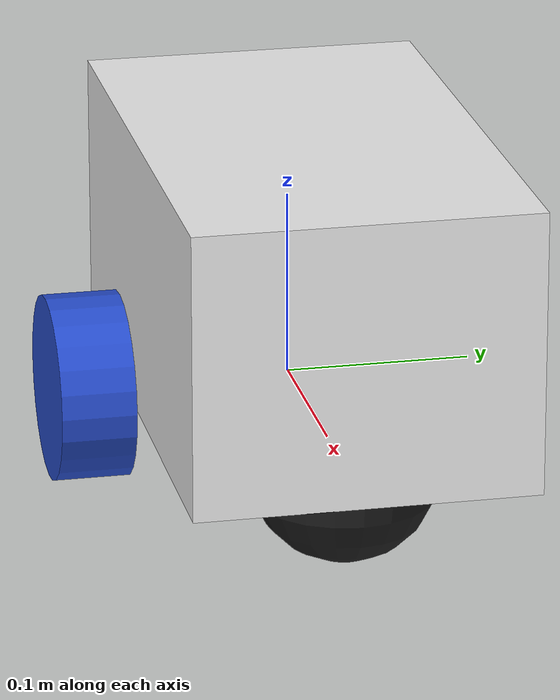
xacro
<?xml version="1.0"?>
<robot xmlns:xacro="http://www.ros.org/wiki/xacro">

    <gazebo reference="chassis">
        <material>Gazebo/White</material>
    </gazebo>

    <gazebo reference="left_wheel">
        <material>Gazebo/Blue</material>
    </gazebo>

    <gazebo reference="right_wheel">
        <material>Gazebo/Blue</material>
    </gazebo>

    <gazebo reference="caster_wheel">
        <material>Gazebo/Black</material>
        <mu1 value = "0.001" />
        <mu2 value = "0.001" />
    </gazebo>

    <!-- Example link -->
    <xacro:include filename="inertial_macros.xacro"/>

    <joint name="base_footprint_joint" type="fixed">
        <parent link="base_link"/>
        <child link="base_footprint"/>
        <origin xyz="0 0 0"/>
    </joint>

    <!-- Example link -->
    <link name="base_footprint">
    </link>

    <!-- Example link -->
    <link name="base_link">
    </link>

    <joint name="base_link" type="fixed">
        <parent link="base_link"/>
        <child link="chassis"/>
        <origin xyz="-0.1 0 0"/>
    </joint>

    <!-- chassis link -->
    <link name="chassis">
        <visual>
            <origin xyz="0.15 0 0.075"/>
            <geometry>
                <box size="0.3 0.18 0.15"/>
            </geometry>
            <material name="white"/>
        </visual>
        <collision>
            <origin xyz="0.15 0 0.075"/>
            <geometry>
                <box size="0.3 0.18 0.15"/>
            </geometry>
        </collision>
        <xacro:inertial_box mass="0.5" x="0.3" y="0.3" z="0.15">
            <origin xyz="0.15 0 0.075" rpy="0 0 0"/>
        </xacro:inertial_box>
    </link>

    <!-- left wheel joint -->
    <joint name="left_wheel_joint" type="continuous">
        <parent link="base_link"/>
        <child link="left_wheel"/>
        <origin xyz="0 0.111 0" rpy="-${pi/2} 0 0"/>
        <axis xyz="0 0 1"/>
    </joint>

    <!-- left wheel link -->
    <link name="left_wheel">
        <visual>
            <geometry>
                <cylinder radius="0.05" length="0.04"/>
            </geometry>
            <material name="blue"/>
        </visual>
        <collision>
            <geometry>
                <cylinder radius="0.05" length="0.04"/>
            </geometry>
        </collision>
        <xacro:inertial_cylinder mass="0.1" length="0.04" radius="0.05">
            <origin xyz="0 0 0" rpy="0 0 0"/>
        </xacro:inertial_cylinder>
        <collision>
            <geometry>
                <sphere radius="0.05"/>
            </geometry>
        </collision>
    </link>

    <!-- right wheel joint -->
    <joint name="right_wheel_joint" type="continuous">
        <parent link="base_link"/>
        <child link="right_wheel"/>
        <origin xyz="0 -0.111 0" rpy="${pi/2} 0 0"/>
        <axis xyz="0 0 -1"/>
    </joint>

    <!-- right wheel link -->
    <link name="right_wheel">
        <visual>
            <geometry>
                <cylinder radius="0.05" length="0.04"/>
            </geometry>
            <material name="blue"/>
        </visual>
        <collision>
            <geometry>
                <cylinder radius="0.05" length="0.04"/>
            </geometry>
        </collision>
        <xacro:inertial_cylinder mass="0.1" length="0.04" radius="0.05">
            <origin xyz="0 0 0" rpy="0 0 0"/>
        </xacro:inertial_cylinder>
        <collision>
            <geometry>
                <sphere radius="0.05"/>
            </geometry>
        </collision>
    </link>

    <!-- caster wheel joint -->
    <joint name="caster_wheel_joint" type="fixed">
        <parent link="chassis"/>
        <child link="caster_wheel"/>
        <origin xyz="0.24 0 0"/>
    </joint>

    <!-- caster wheel link -->
    <link name="caster_wheel">
        <visual>
            <geometry>
                <sphere radius="0.05"/>
            </geometry>
            <material name="black"/>
        </visual>
        <collision>
            <geometry>
                <sphere radius="0.05"/>
            </geometry>
        </collision>
        <xacro:inertial_sphere mass="0.5" radius="0.05">
            <origin xyz="0 0 0" rpy="0 0 0"/>
        </xacro:inertial_sphere>

    </link>

</robot>
